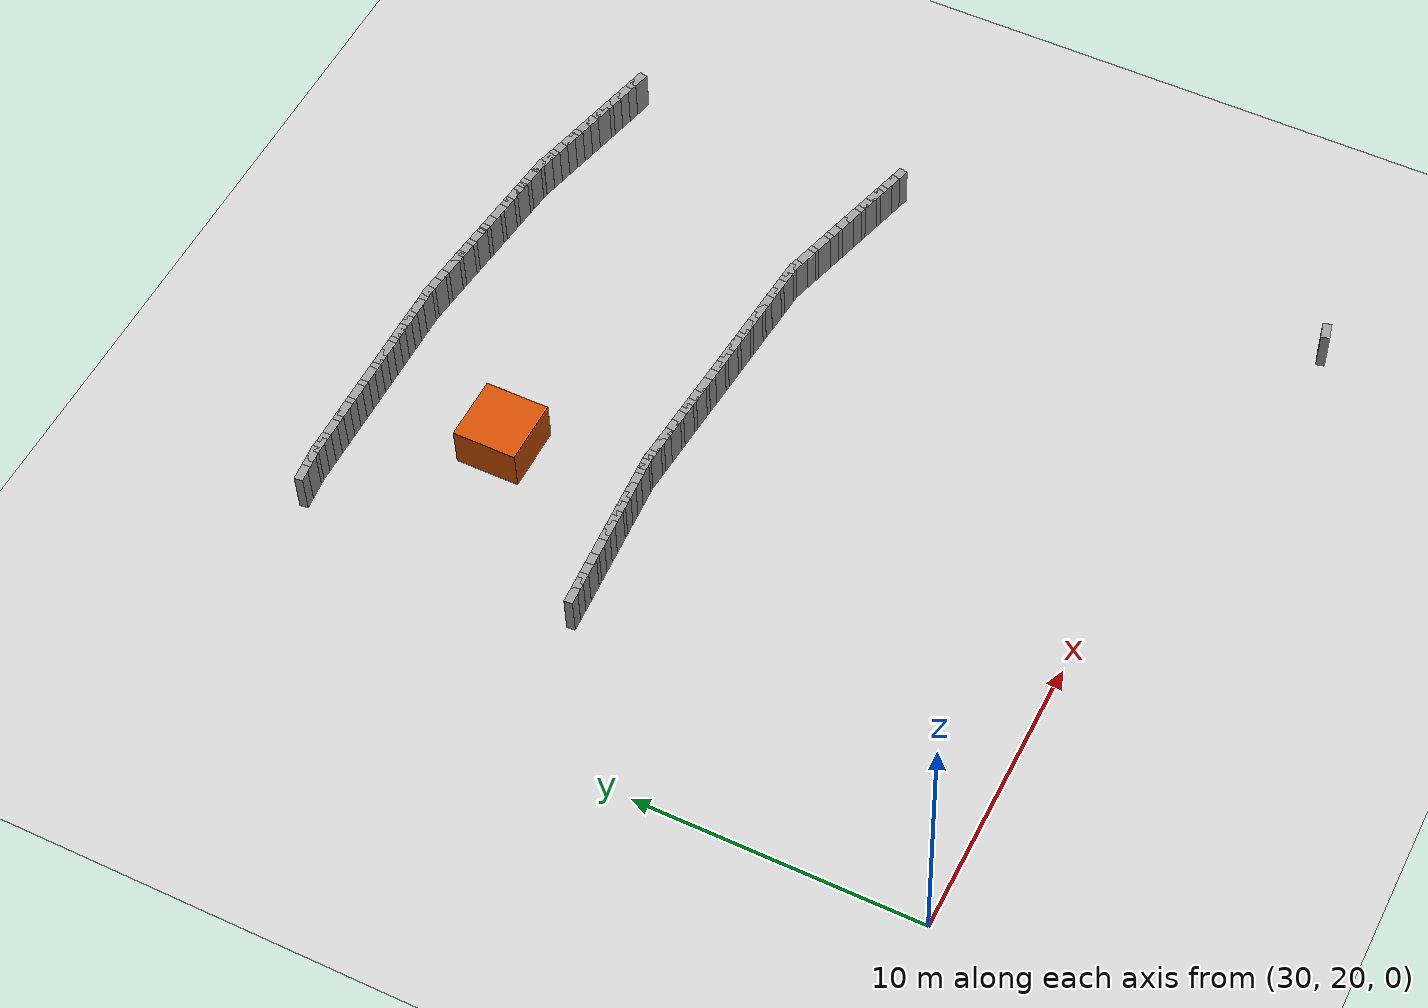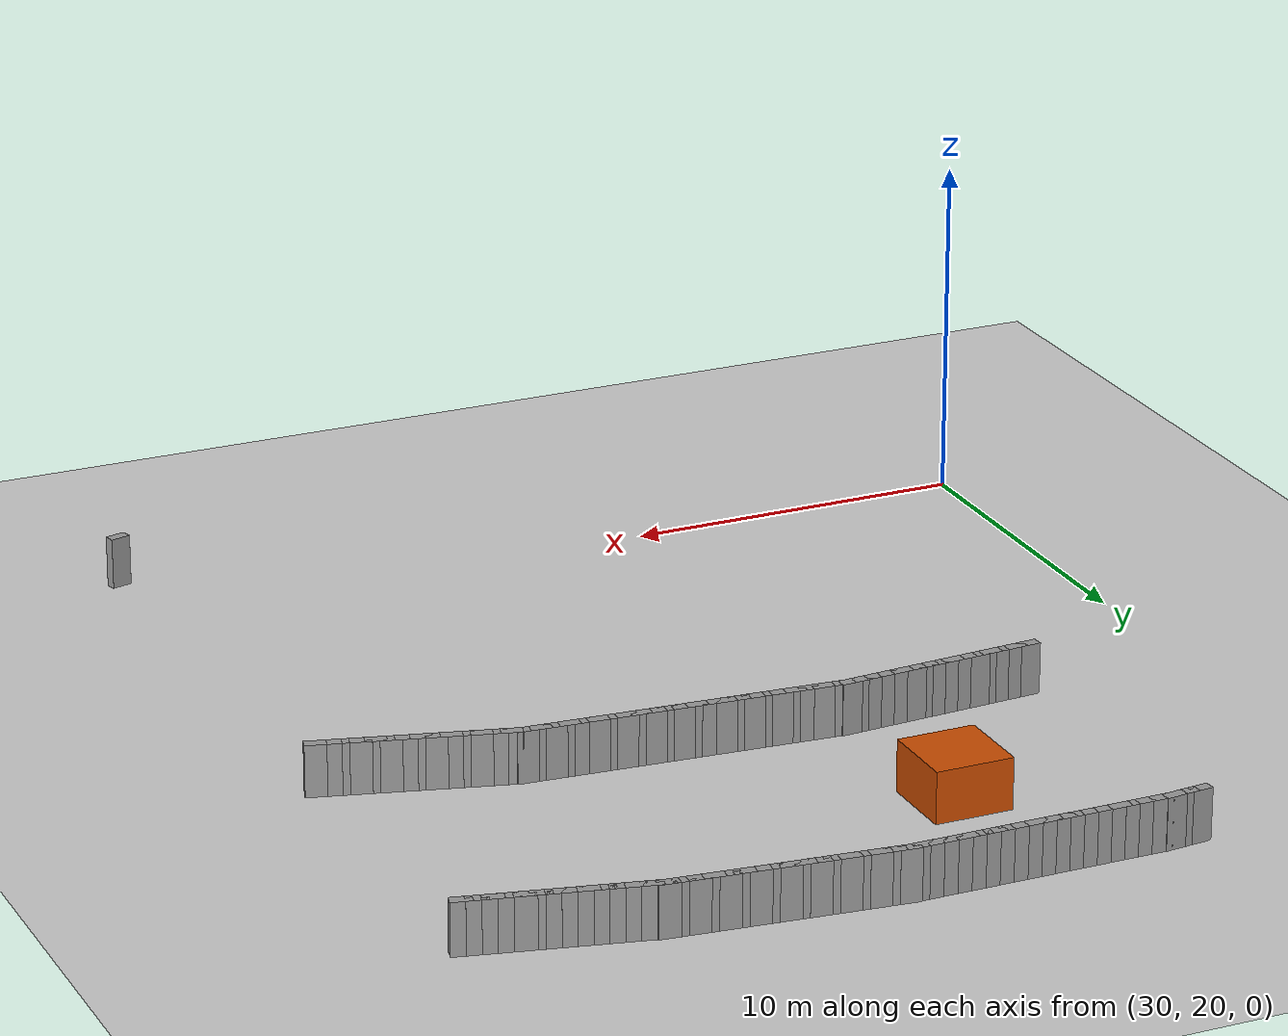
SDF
<sdf version="1.5">
 <world name="img_ellipse_obs">
  <include><uri>model://sun</uri></include>
  <include><uri>model://ground_plane</uri></include>
  <model name="wallL_297">
   <static>true</static>
   <pose>55.198 42.932 0.750 0 0 2.910</pose>
   <link name="link">
    <collision name="col"><geometry><box><size>0.600 0.300 1.500</size></box></geometry></collision>
    <visual name="vis">
     <geometry><box><size>0.600 0.300 1.500</size></box></geometry>
     <material><ambient>0.6 0.6 0.6 1</ambient><diffuse>0.6 0.6 0.6 1</diffuse></material>
    </visual>
   </link>
  </model>
  <model name="wallL_298">
   <static>true</static>
   <pose>54.809 43.024 0.750 0 0 2.910</pose>
   <link name="link">
    <collision name="col"><geometry><box><size>0.600 0.300 1.500</size></box></geometry></collision>
    <visual name="vis">
     <geometry><box><size>0.600 0.300 1.500</size></box></geometry>
     <material><ambient>0.6 0.6 0.6 1</ambient><diffuse>0.6 0.6 0.6 1</diffuse></material>
    </visual>
   </link>
  </model>
  <model name="wallL_299">
   <static>true</static>
   <pose>54.419 43.116 0.750 0 0 2.910</pose>
   <link name="link">
    <collision name="col"><geometry><box><size>0.600 0.300 1.500</size></box></geometry></collision>
    <visual name="vis">
     <geometry><box><size>0.600 0.300 1.500</size></box></geometry>
     <material><ambient>0.6 0.6 0.6 1</ambient><diffuse>0.6 0.6 0.6 1</diffuse></material>
    </visual>
   </link>
  </model>
  <model name="wallL_300">
   <static>true</static>
   <pose>54.030 43.208 0.750 0 0 2.910</pose>
   <link name="link">
    <collision name="col"><geometry><box><size>0.600 0.300 1.500</size></box></geometry></collision>
    <visual name="vis">
     <geometry><box><size>0.600 0.300 1.500</size></box></geometry>
     <material><ambient>0.6 0.6 0.6 1</ambient><diffuse>0.6 0.6 0.6 1</diffuse></material>
    </visual>
   </link>
  </model>
  <model name="wallL_301">
   <static>true</static>
   <pose>53.641 43.300 0.750 0 0 2.910</pose>
   <link name="link">
    <collision name="col"><geometry><box><size>0.600 0.300 1.500</size></box></geometry></collision>
    <visual name="vis">
     <geometry><box><size>0.600 0.300 1.500</size></box></geometry>
     <material><ambient>0.6 0.6 0.6 1</ambient><diffuse>0.6 0.6 0.6 1</diffuse></material>
    </visual>
   </link>
  </model>
  <model name="wallL_302">
   <static>true</static>
   <pose>53.252 43.391 0.750 0 0 2.910</pose>
   <link name="link">
    <collision name="col"><geometry><box><size>0.600 0.300 1.500</size></box></geometry></collision>
    <visual name="vis">
     <geometry><box><size>0.600 0.300 1.500</size></box></geometry>
     <material><ambient>0.6 0.6 0.6 1</ambient><diffuse>0.6 0.6 0.6 1</diffuse></material>
    </visual>
   </link>
  </model>
  <model name="wallL_303">
   <static>true</static>
   <pose>52.862 43.483 0.750 0 0 2.910</pose>
   <link name="link">
    <collision name="col"><geometry><box><size>0.600 0.300 1.500</size></box></geometry></collision>
    <visual name="vis">
     <geometry><box><size>0.600 0.300 1.500</size></box></geometry>
     <material><ambient>0.6 0.6 0.6 1</ambient><diffuse>0.6 0.6 0.6 1</diffuse></material>
    </visual>
   </link>
  </model>
  <model name="wallL_304">
   <static>true</static>
   <pose>52.473 43.575 0.750 0 0 2.910</pose>
   <link name="link">
    <collision name="col"><geometry><box><size>0.600 0.300 1.500</size></box></geometry></collision>
    <visual name="vis">
     <geometry><box><size>0.600 0.300 1.500</size></box></geometry>
     <material><ambient>0.6 0.6 0.6 1</ambient><diffuse>0.6 0.6 0.6 1</diffuse></material>
    </visual>
   </link>
  </model>
  <model name="wallL_305">
   <static>true</static>
   <pose>52.084 43.667 0.750 0 0 2.910</pose>
   <link name="link">
    <collision name="col"><geometry><box><size>0.600 0.300 1.500</size></box></geometry></collision>
    <visual name="vis">
     <geometry><box><size>0.600 0.300 1.500</size></box></geometry>
     <material><ambient>0.6 0.6 0.6 1</ambient><diffuse>0.6 0.6 0.6 1</diffuse></material>
    </visual>
   </link>
  </model>
  <model name="wallL_306">
   <static>true</static>
   <pose>51.694 43.759 0.750 0 0 2.910</pose>
   <link name="link">
    <collision name="col"><geometry><box><size>0.600 0.300 1.500</size></box></geometry></collision>
    <visual name="vis">
     <geometry><box><size>0.600 0.300 1.500</size></box></geometry>
     <material><ambient>0.6 0.6 0.6 1</ambient><diffuse>0.6 0.6 0.6 1</diffuse></material>
    </visual>
   </link>
  </model>
  <model name="wallL_307">
   <static>true</static>
   <pose>51.305 43.851 0.750 0 0 2.910</pose>
   <link name="link">
    <collision name="col"><geometry><box><size>0.600 0.300 1.500</size></box></geometry></collision>
    <visual name="vis">
     <geometry><box><size>0.600 0.300 1.500</size></box></geometry>
     <material><ambient>0.6 0.6 0.6 1</ambient><diffuse>0.6 0.6 0.6 1</diffuse></material>
    </visual>
   </link>
  </model>
  <model name="wallL_308">
   <static>true</static>
   <pose>50.916 43.943 0.750 0 0 2.910</pose>
   <link name="link">
    <collision name="col"><geometry><box><size>0.600 0.300 1.500</size></box></geometry></collision>
    <visual name="vis">
     <geometry><box><size>0.600 0.300 1.500</size></box></geometry>
     <material><ambient>0.6 0.6 0.6 1</ambient><diffuse>0.6 0.6 0.6 1</diffuse></material>
    </visual>
   </link>
  </model>
  <model name="wallL_309">
   <static>true</static>
   <pose>50.527 44.035 0.750 0 0 2.910</pose>
   <link name="link">
    <collision name="col"><geometry><box><size>0.600 0.300 1.500</size></box></geometry></collision>
    <visual name="vis">
     <geometry><box><size>0.600 0.300 1.500</size></box></geometry>
     <material><ambient>0.6 0.6 0.6 1</ambient><diffuse>0.6 0.6 0.6 1</diffuse></material>
    </visual>
   </link>
  </model>
  <model name="wallL_310">
   <static>true</static>
   <pose>50.137 44.126 0.750 0 0 3.035</pose>
   <link name="link">
    <collision name="col"><geometry><box><size>0.600 0.300 1.500</size></box></geometry></collision>
    <visual name="vis">
     <geometry><box><size>0.600 0.300 1.500</size></box></geometry>
     <material><ambient>0.6 0.6 0.6 1</ambient><diffuse>0.6 0.6 0.6 1</diffuse></material>
    </visual>
   </link>
  </model>
  <model name="wallL_311">
   <static>true</static>
   <pose>49.739 44.168 0.750 0 0 3.035</pose>
   <link name="link">
    <collision name="col"><geometry><box><size>0.600 0.300 1.500</size></box></geometry></collision>
    <visual name="vis">
     <geometry><box><size>0.600 0.300 1.500</size></box></geometry>
     <material><ambient>0.6 0.6 0.6 1</ambient><diffuse>0.6 0.6 0.6 1</diffuse></material>
    </visual>
   </link>
  </model>
  <model name="wallL_312">
   <static>true</static>
   <pose>49.342 44.211 0.750 0 0 3.035</pose>
   <link name="link">
    <collision name="col"><geometry><box><size>0.600 0.300 1.500</size></box></geometry></collision>
    <visual name="vis">
     <geometry><box><size>0.600 0.300 1.500</size></box></geometry>
     <material><ambient>0.6 0.6 0.6 1</ambient><diffuse>0.6 0.6 0.6 1</diffuse></material>
    </visual>
   </link>
  </model>
  <model name="wallL_313">
   <static>true</static>
   <pose>48.944 44.253 0.750 0 0 3.035</pose>
   <link name="link">
    <collision name="col"><geometry><box><size>0.600 0.300 1.500</size></box></geometry></collision>
    <visual name="vis">
     <geometry><box><size>0.600 0.300 1.500</size></box></geometry>
     <material><ambient>0.6 0.6 0.6 1</ambient><diffuse>0.6 0.6 0.6 1</diffuse></material>
    </visual>
   </link>
  </model>
  <model name="wallL_314">
   <static>true</static>
   <pose>48.546 44.296 0.750 0 0 3.035</pose>
   <link name="link">
    <collision name="col"><geometry><box><size>0.600 0.300 1.500</size></box></geometry></collision>
    <visual name="vis">
     <geometry><box><size>0.600 0.300 1.500</size></box></geometry>
     <material><ambient>0.6 0.6 0.6 1</ambient><diffuse>0.6 0.6 0.6 1</diffuse></material>
    </visual>
   </link>
  </model>
  <model name="wallL_315">
   <static>true</static>
   <pose>48.148 44.338 0.750 0 0 3.035</pose>
   <link name="link">
    <collision name="col"><geometry><box><size>0.600 0.300 1.500</size></box></geometry></collision>
    <visual name="vis">
     <geometry><box><size>0.600 0.300 1.500</size></box></geometry>
     <material><ambient>0.6 0.6 0.6 1</ambient><diffuse>0.6 0.6 0.6 1</diffuse></material>
    </visual>
   </link>
  </model>
  <model name="wallL_316">
   <static>true</static>
   <pose>47.751 44.381 0.750 0 0 3.035</pose>
   <link name="link">
    <collision name="col"><geometry><box><size>0.600 0.300 1.500</size></box></geometry></collision>
    <visual name="vis">
     <geometry><box><size>0.600 0.300 1.500</size></box></geometry>
     <material><ambient>0.6 0.6 0.6 1</ambient><diffuse>0.6 0.6 0.6 1</diffuse></material>
    </visual>
   </link>
  </model>
  <model name="wallL_317">
   <static>true</static>
   <pose>47.353 44.423 0.750 0 0 3.035</pose>
   <link name="link">
    <collision name="col"><geometry><box><size>0.600 0.300 1.500</size></box></geometry></collision>
    <visual name="vis">
     <geometry><box><size>0.600 0.300 1.500</size></box></geometry>
     <material><ambient>0.6 0.6 0.6 1</ambient><diffuse>0.6 0.6 0.6 1</diffuse></material>
    </visual>
   </link>
  </model>
  <model name="wallL_318">
   <static>true</static>
   <pose>46.955 44.466 0.750 0 0 3.035</pose>
   <link name="link">
    <collision name="col"><geometry><box><size>0.600 0.300 1.500</size></box></geometry></collision>
    <visual name="vis">
     <geometry><box><size>0.600 0.300 1.500</size></box></geometry>
     <material><ambient>0.6 0.6 0.6 1</ambient><diffuse>0.6 0.6 0.6 1</diffuse></material>
    </visual>
   </link>
  </model>
  <model name="wallL_319">
   <static>true</static>
   <pose>46.557 44.508 0.750 0 0 3.035</pose>
   <link name="link">
    <collision name="col"><geometry><box><size>0.600 0.300 1.500</size></box></geometry></collision>
    <visual name="vis">
     <geometry><box><size>0.600 0.300 1.500</size></box></geometry>
     <material><ambient>0.6 0.6 0.6 1</ambient><diffuse>0.6 0.6 0.6 1</diffuse></material>
    </visual>
   </link>
  </model>
  <model name="wallL_320">
   <static>true</static>
   <pose>46.160 44.551 0.750 0 0 3.035</pose>
   <link name="link">
    <collision name="col"><geometry><box><size>0.600 0.300 1.500</size></box></geometry></collision>
    <visual name="vis">
     <geometry><box><size>0.600 0.300 1.500</size></box></geometry>
     <material><ambient>0.6 0.6 0.6 1</ambient><diffuse>0.6 0.6 0.6 1</diffuse></material>
    </visual>
   </link>
  </model>
  <model name="wallL_321">
   <static>true</static>
   <pose>45.762 44.593 0.750 0 0 3.035</pose>
   <link name="link">
    <collision name="col"><geometry><box><size>0.600 0.300 1.500</size></box></geometry></collision>
    <visual name="vis">
     <geometry><box><size>0.600 0.300 1.500</size></box></geometry>
     <material><ambient>0.6 0.6 0.6 1</ambient><diffuse>0.6 0.6 0.6 1</diffuse></material>
    </visual>
   </link>
  </model>
  <model name="wallL_322">
   <static>true</static>
   <pose>45.364 44.636 0.750 0 0 3.035</pose>
   <link name="link">
    <collision name="col"><geometry><box><size>0.600 0.300 1.500</size></box></geometry></collision>
    <visual name="vis">
     <geometry><box><size>0.600 0.300 1.500</size></box></geometry>
     <material><ambient>0.6 0.6 0.6 1</ambient><diffuse>0.6 0.6 0.6 1</diffuse></material>
    </visual>
   </link>
  </model>
  <model name="wallL_323">
   <static>true</static>
   <pose>44.967 44.678 0.750 0 0 3.035</pose>
   <link name="link">
    <collision name="col"><geometry><box><size>0.600 0.300 1.500</size></box></geometry></collision>
    <visual name="vis">
     <geometry><box><size>0.600 0.300 1.500</size></box></geometry>
     <material><ambient>0.6 0.6 0.6 1</ambient><diffuse>0.6 0.6 0.6 1</diffuse></material>
    </visual>
   </link>
  </model>
  <model name="wallL_324">
   <static>true</static>
   <pose>44.569 44.721 0.750 0 0 3.035</pose>
   <link name="link">
    <collision name="col"><geometry><box><size>0.600 0.300 1.500</size></box></geometry></collision>
    <visual name="vis">
     <geometry><box><size>0.600 0.300 1.500</size></box></geometry>
     <material><ambient>0.6 0.6 0.6 1</ambient><diffuse>0.6 0.6 0.6 1</diffuse></material>
    </visual>
   </link>
  </model>
  <model name="wallL_325">
   <static>true</static>
   <pose>44.171 44.763 0.750 0 0 3.035</pose>
   <link name="link">
    <collision name="col"><geometry><box><size>0.600 0.300 1.500</size></box></geometry></collision>
    <visual name="vis">
     <geometry><box><size>0.600 0.300 1.500</size></box></geometry>
     <material><ambient>0.6 0.6 0.6 1</ambient><diffuse>0.6 0.6 0.6 1</diffuse></material>
    </visual>
   </link>
  </model>
  <model name="wallL_326">
   <static>true</static>
   <pose>43.773 44.806 0.750 0 0 3.035</pose>
   <link name="link">
    <collision name="col"><geometry><box><size>0.600 0.300 1.500</size></box></geometry></collision>
    <visual name="vis">
     <geometry><box><size>0.600 0.300 1.500</size></box></geometry>
     <material><ambient>0.6 0.6 0.6 1</ambient><diffuse>0.6 0.6 0.6 1</diffuse></material>
    </visual>
   </link>
  </model>
  <model name="wallL_327">
   <static>true</static>
   <pose>43.373 44.809 0.750 0 0 3.142</pose>
   <link name="link">
    <collision name="col"><geometry><box><size>0.600 0.300 1.500</size></box></geometry></collision>
    <visual name="vis">
     <geometry><box><size>0.600 0.300 1.500</size></box></geometry>
     <material><ambient>0.6 0.6 0.6 1</ambient><diffuse>0.6 0.6 0.6 1</diffuse></material>
    </visual>
   </link>
  </model>
  <model name="wallL_328">
   <static>true</static>
   <pose>42.973 44.809 0.750 0 0 3.142</pose>
   <link name="link">
    <collision name="col"><geometry><box><size>0.600 0.300 1.500</size></box></geometry></collision>
    <visual name="vis">
     <geometry><box><size>0.600 0.300 1.500</size></box></geometry>
     <material><ambient>0.6 0.6 0.6 1</ambient><diffuse>0.6 0.6 0.6 1</diffuse></material>
    </visual>
   </link>
  </model>
  <model name="wallL_329">
   <static>true</static>
   <pose>42.573 44.809 0.750 0 0 3.142</pose>
   <link name="link">
    <collision name="col"><geometry><box><size>0.600 0.300 1.500</size></box></geometry></collision>
    <visual name="vis">
     <geometry><box><size>0.600 0.300 1.500</size></box></geometry>
     <material><ambient>0.6 0.6 0.6 1</ambient><diffuse>0.6 0.6 0.6 1</diffuse></material>
    </visual>
   </link>
  </model>
  <model name="wallL_330">
   <static>true</static>
   <pose>42.173 44.809 0.750 0 0 3.142</pose>
   <link name="link">
    <collision name="col"><geometry><box><size>0.600 0.300 1.500</size></box></geometry></collision>
    <visual name="vis">
     <geometry><box><size>0.600 0.300 1.500</size></box></geometry>
     <material><ambient>0.6 0.6 0.6 1</ambient><diffuse>0.6 0.6 0.6 1</diffuse></material>
    </visual>
   </link>
  </model>
  <model name="wallL_331">
   <static>true</static>
   <pose>41.773 44.809 0.750 0 0 3.142</pose>
   <link name="link">
    <collision name="col"><geometry><box><size>0.600 0.300 1.500</size></box></geometry></collision>
    <visual name="vis">
     <geometry><box><size>0.600 0.300 1.500</size></box></geometry>
     <material><ambient>0.6 0.6 0.6 1</ambient><diffuse>0.6 0.6 0.6 1</diffuse></material>
    </visual>
   </link>
  </model>
  <model name="wallL_332">
   <static>true</static>
   <pose>41.373 44.809 0.750 0 0 3.142</pose>
   <link name="link">
    <collision name="col"><geometry><box><size>0.600 0.300 1.500</size></box></geometry></collision>
    <visual name="vis">
     <geometry><box><size>0.600 0.300 1.500</size></box></geometry>
     <material><ambient>0.6 0.6 0.6 1</ambient><diffuse>0.6 0.6 0.6 1</diffuse></material>
    </visual>
   </link>
  </model>
  <model name="wallL_333">
   <static>true</static>
   <pose>40.973 44.809 0.750 0 0 3.142</pose>
   <link name="link">
    <collision name="col"><geometry><box><size>0.600 0.300 1.500</size></box></geometry></collision>
    <visual name="vis">
     <geometry><box><size>0.600 0.300 1.500</size></box></geometry>
     <material><ambient>0.6 0.6 0.6 1</ambient><diffuse>0.6 0.6 0.6 1</diffuse></material>
    </visual>
   </link>
  </model>
  <model name="wallL_334">
   <static>true</static>
   <pose>40.573 44.809 0.750 0 0 3.142</pose>
   <link name="link">
    <collision name="col"><geometry><box><size>0.600 0.300 1.500</size></box></geometry></collision>
    <visual name="vis">
     <geometry><box><size>0.600 0.300 1.500</size></box></geometry>
     <material><ambient>0.6 0.6 0.6 1</ambient><diffuse>0.6 0.6 0.6 1</diffuse></material>
    </visual>
   </link>
  </model>
  <model name="wallL_335">
   <static>true</static>
   <pose>40.173 44.809 0.750 0 0 3.142</pose>
   <link name="link">
    <collision name="col"><geometry><box><size>0.600 0.300 1.500</size></box></geometry></collision>
    <visual name="vis">
     <geometry><box><size>0.600 0.300 1.500</size></box></geometry>
     <material><ambient>0.6 0.6 0.6 1</ambient><diffuse>0.6 0.6 0.6 1</diffuse></material>
    </visual>
   </link>
  </model>
  <model name="wallL_336">
   <static>true</static>
   <pose>39.773 44.809 0.750 0 0 3.142</pose>
   <link name="link">
    <collision name="col"><geometry><box><size>0.600 0.300 1.500</size></box></geometry></collision>
    <visual name="vis">
     <geometry><box><size>0.600 0.300 1.500</size></box></geometry>
     <material><ambient>0.6 0.6 0.6 1</ambient><diffuse>0.6 0.6 0.6 1</diffuse></material>
    </visual>
   </link>
  </model>
  <model name="wallL_337">
   <static>true</static>
   <pose>39.373 44.809 0.750 0 0 3.142</pose>
   <link name="link">
    <collision name="col"><geometry><box><size>0.600 0.300 1.500</size></box></geometry></collision>
    <visual name="vis">
     <geometry><box><size>0.600 0.300 1.500</size></box></geometry>
     <material><ambient>0.6 0.6 0.6 1</ambient><diffuse>0.6 0.6 0.6 1</diffuse></material>
    </visual>
   </link>
  </model>
  <model name="wallL_338">
   <static>true</static>
   <pose>38.973 44.809 0.750 0 0 3.142</pose>
   <link name="link">
    <collision name="col"><geometry><box><size>0.600 0.300 1.500</size></box></geometry></collision>
    <visual name="vis">
     <geometry><box><size>0.600 0.300 1.500</size></box></geometry>
     <material><ambient>0.6 0.6 0.6 1</ambient><diffuse>0.6 0.6 0.6 1</diffuse></material>
    </visual>
   </link>
  </model>
  <model name="wallL_339">
   <static>true</static>
   <pose>38.573 44.809 0.750 0 0 3.142</pose>
   <link name="link">
    <collision name="col"><geometry><box><size>0.600 0.300 1.500</size></box></geometry></collision>
    <visual name="vis">
     <geometry><box><size>0.600 0.300 1.500</size></box></geometry>
     <material><ambient>0.6 0.6 0.6 1</ambient><diffuse>0.6 0.6 0.6 1</diffuse></material>
    </visual>
   </link>
  </model>
  <model name="wallL_340">
   <static>true</static>
   <pose>38.173 44.809 0.750 0 0 3.142</pose>
   <link name="link">
    <collision name="col"><geometry><box><size>0.600 0.300 1.500</size></box></geometry></collision>
    <visual name="vis">
     <geometry><box><size>0.600 0.300 1.500</size></box></geometry>
     <material><ambient>0.6 0.6 0.6 1</ambient><diffuse>0.6 0.6 0.6 1</diffuse></material>
    </visual>
   </link>
  </model>
  <model name="wallL_341">
   <static>true</static>
   <pose>37.773 44.809 0.750 0 0 3.142</pose>
   <link name="link">
    <collision name="col"><geometry><box><size>0.600 0.300 1.500</size></box></geometry></collision>
    <visual name="vis">
     <geometry><box><size>0.600 0.300 1.500</size></box></geometry>
     <material><ambient>0.6 0.6 0.6 1</ambient><diffuse>0.6 0.6 0.6 1</diffuse></material>
    </visual>
   </link>
  </model>
  <model name="wallL_342">
   <static>true</static>
   <pose>37.373 44.809 0.750 0 0 3.142</pose>
   <link name="link">
    <collision name="col"><geometry><box><size>0.600 0.300 1.500</size></box></geometry></collision>
    <visual name="vis">
     <geometry><box><size>0.600 0.300 1.500</size></box></geometry>
     <material><ambient>0.6 0.6 0.6 1</ambient><diffuse>0.6 0.6 0.6 1</diffuse></material>
    </visual>
   </link>
  </model>
  <model name="wallL_343">
   <static>true</static>
   <pose>36.973 44.809 0.750 0 0 3.142</pose>
   <link name="link">
    <collision name="col"><geometry><box><size>0.600 0.300 1.500</size></box></geometry></collision>
    <visual name="vis">
     <geometry><box><size>0.600 0.300 1.500</size></box></geometry>
     <material><ambient>0.6 0.6 0.6 1</ambient><diffuse>0.6 0.6 0.6 1</diffuse></material>
    </visual>
   </link>
  </model>
  <model name="wallL_344">
   <static>true</static>
   <pose>36.573 44.809 0.750 0 0 3.142</pose>
   <link name="link">
    <collision name="col"><geometry><box><size>0.600 0.300 1.500</size></box></geometry></collision>
    <visual name="vis">
     <geometry><box><size>0.600 0.300 1.500</size></box></geometry>
     <material><ambient>0.6 0.6 0.6 1</ambient><diffuse>0.6 0.6 0.6 1</diffuse></material>
    </visual>
   </link>
  </model>
  <model name="wallL_345">
   <static>true</static>
   <pose>36.174 44.798 0.750 0 0 -3.042</pose>
   <link name="link">
    <collision name="col"><geometry><box><size>0.600 0.300 1.500</size></box></geometry></collision>
    <visual name="vis">
     <geometry><box><size>0.600 0.300 1.500</size></box></geometry>
     <material><ambient>0.6 0.6 0.6 1</ambient><diffuse>0.6 0.6 0.6 1</diffuse></material>
    </visual>
   </link>
  </model>
  <model name="wallL_346">
   <static>true</static>
   <pose>35.776 44.758 0.750 0 0 -3.042</pose>
   <link name="link">
    <collision name="col"><geometry><box><size>0.600 0.300 1.500</size></box></geometry></collision>
    <visual name="vis">
     <geometry><box><size>0.600 0.300 1.500</size></box></geometry>
     <material><ambient>0.6 0.6 0.6 1</ambient><diffuse>0.6 0.6 0.6 1</diffuse></material>
    </visual>
   </link>
  </model>
  <model name="wallL_347">
   <static>true</static>
   <pose>35.378 44.719 0.750 0 0 -3.042</pose>
   <link name="link">
    <collision name="col"><geometry><box><size>0.600 0.300 1.500</size></box></geometry></collision>
    <visual name="vis">
     <geometry><box><size>0.600 0.300 1.500</size></box></geometry>
     <material><ambient>0.6 0.6 0.6 1</ambient><diffuse>0.6 0.6 0.6 1</diffuse></material>
    </visual>
   </link>
  </model>
  <model name="wallR_59">
   <static>true</static>
   <pose>34.984 34.653 0.750 0 0 0.058</pose>
   <link name="link">
    <collision name="col"><geometry><box><size>0.600 0.300 1.500</size></box></geometry></collision>
    <visual name="vis">
     <geometry><box><size>0.600 0.300 1.500</size></box></geometry>
     <material><ambient>0.6 0.6 0.6 1</ambient><diffuse>0.6 0.6 0.6 1</diffuse></material>
    </visual>
   </link>
  </model>
  <model name="wallR_60">
   <static>true</static>
   <pose>35.383 34.676 0.750 0 0 0.058</pose>
   <link name="link">
    <collision name="col"><geometry><box><size>0.600 0.300 1.500</size></box></geometry></collision>
    <visual name="vis">
     <geometry><box><size>0.600 0.300 1.500</size></box></geometry>
     <material><ambient>0.6 0.6 0.6 1</ambient><diffuse>0.6 0.6 0.6 1</diffuse></material>
    </visual>
   </link>
  </model>
  <model name="wallR_61">
   <static>true</static>
   <pose>35.783 34.699 0.750 0 0 0.058</pose>
   <link name="link">
    <collision name="col"><geometry><box><size>0.600 0.300 1.500</size></box></geometry></collision>
    <visual name="vis">
     <geometry><box><size>0.600 0.300 1.500</size></box></geometry>
     <material><ambient>0.6 0.6 0.6 1</ambient><diffuse>0.6 0.6 0.6 1</diffuse></material>
    </visual>
   </link>
  </model>
  <model name="wallR_62">
   <static>true</static>
   <pose>36.182 34.722 0.750 0 0 0.058</pose>
   <link name="link">
    <collision name="col"><geometry><box><size>0.600 0.300 1.500</size></box></geometry></collision>
    <visual name="vis">
     <geometry><box><size>0.600 0.300 1.500</size></box></geometry>
     <material><ambient>0.6 0.6 0.6 1</ambient><diffuse>0.6 0.6 0.6 1</diffuse></material>
    </visual>
   </link>
  </model>
  <model name="wallR_63">
   <static>true</static>
   <pose>36.581 34.746 0.750 0 0 0.058</pose>
   <link name="link">
    <collision name="col"><geometry><box><size>0.600 0.300 1.500</size></box></geometry></collision>
    <visual name="vis">
     <geometry><box><size>0.600 0.300 1.500</size></box></geometry>
     <material><ambient>0.6 0.6 0.6 1</ambient><diffuse>0.6 0.6 0.6 1</diffuse></material>
    </visual>
   </link>
  </model>
  <model name="wallR_64">
   <static>true</static>
   <pose>36.981 34.769 0.750 0 0 0.058</pose>
   <link name="link">
    <collision name="col"><geometry><box><size>0.600 0.300 1.500</size></box></geometry></collision>
    <visual name="vis">
     <geometry><box><size>0.600 0.300 1.500</size></box></geometry>
     <material><ambient>0.6 0.6 0.6 1</ambient><diffuse>0.6 0.6 0.6 1</diffuse></material>
    </visual>
   </link>
  </model>
  <model name="wallR_65">
   <static>true</static>
   <pose>37.380 34.792 0.750 0 0 0.058</pose>
   <link name="link">
    <collision name="col"><geometry><box><size>0.600 0.300 1.500</size></box></geometry></collision>
    <visual name="vis">
     <geometry><box><size>0.600 0.300 1.500</size></box></geometry>
     <material><ambient>0.6 0.6 0.6 1</ambient><diffuse>0.6 0.6 0.6 1</diffuse></material>
    </visual>
   </link>
  </model>
  <model name="wallR_66">
   <static>true</static>
   <pose>37.779 34.815 0.750 0 0 0.058</pose>
   <link name="link">
    <collision name="col"><geometry><box><size>0.600 0.300 1.500</size></box></geometry></collision>
    <visual name="vis">
     <geometry><box><size>0.600 0.300 1.500</size></box></geometry>
     <material><ambient>0.6 0.6 0.6 1</ambient><diffuse>0.6 0.6 0.6 1</diffuse></material>
    </visual>
   </link>
  </model>
  <model name="wallR_67">
   <static>true</static>
   <pose>38.179 34.838 0.750 0 0 0.058</pose>
   <link name="link">
    <collision name="col"><geometry><box><size>0.600 0.300 1.500</size></box></geometry></collision>
    <visual name="vis">
     <geometry><box><size>0.600 0.300 1.500</size></box></geometry>
     <material><ambient>0.6 0.6 0.6 1</ambient><diffuse>0.6 0.6 0.6 1</diffuse></material>
    </visual>
   </link>
  </model>
  <model name="wallR_68">
   <static>true</static>
   <pose>38.578 34.862 0.750 0 0 0.058</pose>
   <link name="link">
    <collision name="col"><geometry><box><size>0.600 0.300 1.500</size></box></geometry></collision>
    <visual name="vis">
     <geometry><box><size>0.600 0.300 1.500</size></box></geometry>
     <material><ambient>0.6 0.6 0.6 1</ambient><diffuse>0.6 0.6 0.6 1</diffuse></material>
    </visual>
   </link>
  </model>
  <model name="wallR_69">
   <static>true</static>
   <pose>38.977 34.885 0.750 0 0 0.058</pose>
   <link name="link">
    <collision name="col"><geometry><box><size>0.600 0.300 1.500</size></box></geometry></collision>
    <visual name="vis">
     <geometry><box><size>0.600 0.300 1.500</size></box></geometry>
     <material><ambient>0.6 0.6 0.6 1</ambient><diffuse>0.6 0.6 0.6 1</diffuse></material>
    </visual>
   </link>
  </model>
  <model name="wallR_70">
   <static>true</static>
   <pose>39.377 34.908 0.750 0 0 0.058</pose>
   <link name="link">
    <collision name="col"><geometry><box><size>0.600 0.300 1.500</size></box></geometry></collision>
    <visual name="vis">
     <geometry><box><size>0.600 0.300 1.500</size></box></geometry>
     <material><ambient>0.6 0.6 0.6 1</ambient><diffuse>0.6 0.6 0.6 1</diffuse></material>
    </visual>
   </link>
  </model>
  <model name="wallR_71">
   <static>true</static>
   <pose>39.776 34.931 0.750 0 0 0.058</pose>
   <link name="link">
    <collision name="col"><geometry><box><size>0.600 0.300 1.500</size></box></geometry></collision>
    <visual name="vis">
     <geometry><box><size>0.600 0.300 1.500</size></box></geometry>
     <material><ambient>0.6 0.6 0.6 1</ambient><diffuse>0.6 0.6 0.6 1</diffuse></material>
    </visual>
   </link>
  </model>
  <model name="wallR_72">
   <static>true</static>
   <pose>40.175 34.954 0.750 0 0 0.058</pose>
   <link name="link">
    <collision name="col"><geometry><box><size>0.600 0.300 1.500</size></box></geometry></collision>
    <visual name="vis">
     <geometry><box><size>0.600 0.300 1.500</size></box></geometry>
     <material><ambient>0.6 0.6 0.6 1</ambient><diffuse>0.6 0.6 0.6 1</diffuse></material>
    </visual>
   </link>
  </model>
  <model name="wallR_73">
   <static>true</static>
   <pose>40.574 34.978 0.750 0 0 0.058</pose>
   <link name="link">
    <collision name="col"><geometry><box><size>0.600 0.300 1.500</size></box></geometry></collision>
    <visual name="vis">
     <geometry><box><size>0.600 0.300 1.500</size></box></geometry>
     <material><ambient>0.6 0.6 0.6 1</ambient><diffuse>0.6 0.6 0.6 1</diffuse></material>
    </visual>
   </link>
  </model>
  <model name="wallR_74">
   <static>true</static>
   <pose>40.973 34.957 0.750 0 0 -0.076</pose>
   <link name="link">
    <collision name="col"><geometry><box><size>0.600 0.300 1.500</size></box></geometry></collision>
    <visual name="vis">
     <geometry><box><size>0.600 0.300 1.500</size></box></geometry>
     <material><ambient>0.6 0.6 0.6 1</ambient><diffuse>0.6 0.6 0.6 1</diffuse></material>
    </visual>
   </link>
  </model>
  <model name="wallR_75">
   <static>true</static>
   <pose>41.372 34.927 0.750 0 0 -0.076</pose>
   <link name="link">
    <collision name="col"><geometry><box><size>0.600 0.300 1.500</size></box></geometry></collision>
    <visual name="vis">
     <geometry><box><size>0.600 0.300 1.500</size></box></geometry>
     <material><ambient>0.6 0.6 0.6 1</ambient><diffuse>0.6 0.6 0.6 1</diffuse></material>
    </visual>
   </link>
  </model>
  <model name="wallR_76">
   <static>true</static>
   <pose>41.771 34.896 0.750 0 0 -0.076</pose>
   <link name="link">
    <collision name="col"><geometry><box><size>0.600 0.300 1.500</size></box></geometry></collision>
    <visual name="vis">
     <geometry><box><size>0.600 0.300 1.500</size></box></geometry>
     <material><ambient>0.6 0.6 0.6 1</ambient><diffuse>0.6 0.6 0.6 1</diffuse></material>
    </visual>
   </link>
  </model>
  <model name="wallR_77">
   <static>true</static>
   <pose>42.170 34.865 0.750 0 0 -0.076</pose>
   <link name="link">
    <collision name="col"><geometry><box><size>0.600 0.300 1.500</size></box></geometry></collision>
    <visual name="vis">
     <geometry><box><size>0.600 0.300 1.500</size></box></geometry>
     <material><ambient>0.6 0.6 0.6 1</ambient><diffuse>0.6 0.6 0.6 1</diffuse></material>
    </visual>
   </link>
  </model>
  <model name="wallR_78">
   <static>true</static>
   <pose>42.569 34.835 0.750 0 0 -0.076</pose>
   <link name="link">
    <collision name="col"><geometry><box><size>0.600 0.300 1.500</size></box></geometry></collision>
    <visual name="vis">
     <geometry><box><size>0.600 0.300 1.500</size></box></geometry>
     <material><ambient>0.6 0.6 0.6 1</ambient><diffuse>0.6 0.6 0.6 1</diffuse></material>
    </visual>
   </link>
  </model>
  <model name="wallR_79">
   <static>true</static>
   <pose>42.968 34.804 0.750 0 0 -0.076</pose>
   <link name="link">
    <collision name="col"><geometry><box><size>0.600 0.300 1.500</size></box></geometry></collision>
    <visual name="vis">
     <geometry><box><size>0.600 0.300 1.500</size></box></geometry>
     <material><ambient>0.6 0.6 0.6 1</ambient><diffuse>0.6 0.6 0.6 1</diffuse></material>
    </visual>
   </link>
  </model>
  <model name="wallR_80">
   <static>true</static>
   <pose>43.366 34.774 0.750 0 0 -0.076</pose>
   <link name="link">
    <collision name="col"><geometry><box><size>0.600 0.300 1.500</size></box></geometry></collision>
    <visual name="vis">
     <geometry><box><size>0.600 0.300 1.500</size></box></geometry>
     <material><ambient>0.6 0.6 0.6 1</ambient><diffuse>0.6 0.6 0.6 1</diffuse></material>
    </visual>
   </link>
  </model>
  <model name="wallR_81">
   <static>true</static>
   <pose>43.765 34.743 0.750 0 0 -0.076</pose>
   <link name="link">
    <collision name="col"><geometry><box><size>0.600 0.300 1.500</size></box></geometry></collision>
    <visual name="vis">
     <geometry><box><size>0.600 0.300 1.500</size></box></geometry>
     <material><ambient>0.6 0.6 0.6 1</ambient><diffuse>0.6 0.6 0.6 1</diffuse></material>
    </visual>
   </link>
  </model>
  <model name="wallR_82">
   <static>true</static>
   <pose>44.164 34.713 0.750 0 0 -0.076</pose>
   <link name="link">
    <collision name="col"><geometry><box><size>0.600 0.300 1.500</size></box></geometry></collision>
    <visual name="vis">
     <geometry><box><size>0.600 0.300 1.500</size></box></geometry>
     <material><ambient>0.6 0.6 0.6 1</ambient><diffuse>0.6 0.6 0.6 1</diffuse></material>
    </visual>
   </link>
  </model>
  <model name="wallR_83">
   <static>true</static>
   <pose>44.563 34.682 0.750 0 0 -0.076</pose>
   <link name="link">
    <collision name="col"><geometry><box><size>0.600 0.300 1.500</size></box></geometry></collision>
    <visual name="vis">
     <geometry><box><size>0.600 0.300 1.500</size></box></geometry>
     <material><ambient>0.6 0.6 0.6 1</ambient><diffuse>0.6 0.6 0.6 1</diffuse></material>
    </visual>
   </link>
  </model>
  <model name="wallR_84">
   <static>true</static>
   <pose>44.962 34.651 0.750 0 0 -0.076</pose>
   <link name="link">
    <collision name="col"><geometry><box><size>0.600 0.300 1.500</size></box></geometry></collision>
    <visual name="vis">
     <geometry><box><size>0.600 0.300 1.500</size></box></geometry>
     <material><ambient>0.6 0.6 0.6 1</ambient><diffuse>0.6 0.6 0.6 1</diffuse></material>
    </visual>
   </link>
  </model>
  <model name="wallR_85">
   <static>true</static>
   <pose>45.361 34.621 0.750 0 0 -0.076</pose>
   <link name="link">
    <collision name="col"><geometry><box><size>0.600 0.300 1.500</size></box></geometry></collision>
    <visual name="vis">
     <geometry><box><size>0.600 0.300 1.500</size></box></geometry>
     <material><ambient>0.6 0.6 0.6 1</ambient><diffuse>0.6 0.6 0.6 1</diffuse></material>
    </visual>
   </link>
  </model>
  <model name="wallR_86">
   <static>true</static>
   <pose>45.759 34.590 0.750 0 0 -0.076</pose>
   <link name="link">
    <collision name="col"><geometry><box><size>0.600 0.300 1.500</size></box></geometry></collision>
    <visual name="vis">
     <geometry><box><size>0.600 0.300 1.500</size></box></geometry>
     <material><ambient>0.6 0.6 0.6 1</ambient><diffuse>0.6 0.6 0.6 1</diffuse></material>
    </visual>
   </link>
  </model>
  <model name="wallR_87">
   <static>true</static>
   <pose>46.158 34.560 0.750 0 0 -0.076</pose>
   <link name="link">
    <collision name="col"><geometry><box><size>0.600 0.300 1.500</size></box></geometry></collision>
    <visual name="vis">
     <geometry><box><size>0.600 0.300 1.500</size></box></geometry>
     <material><ambient>0.6 0.6 0.6 1</ambient><diffuse>0.6 0.6 0.6 1</diffuse></material>
    </visual>
   </link>
  </model>
  <model name="wallR_88">
   <static>true</static>
   <pose>46.557 34.529 0.750 0 0 -0.076</pose>
   <link name="link">
    <collision name="col"><geometry><box><size>0.600 0.300 1.500</size></box></geometry></collision>
    <visual name="vis">
     <geometry><box><size>0.600 0.300 1.500</size></box></geometry>
     <material><ambient>0.6 0.6 0.6 1</ambient><diffuse>0.6 0.6 0.6 1</diffuse></material>
    </visual>
   </link>
  </model>
  <model name="wallR_89">
   <static>true</static>
   <pose>46.956 34.499 0.750 0 0 -0.076</pose>
   <link name="link">
    <collision name="col"><geometry><box><size>0.600 0.300 1.500</size></box></geometry></collision>
    <visual name="vis">
     <geometry><box><size>0.600 0.300 1.500</size></box></geometry>
     <material><ambient>0.6 0.6 0.6 1</ambient><diffuse>0.6 0.6 0.6 1</diffuse></material>
    </visual>
   </link>
  </model>
  <model name="wallR_90">
   <static>true</static>
   <pose>47.355 34.468 0.750 0 0 -0.076</pose>
   <link name="link">
    <collision name="col"><geometry><box><size>0.600 0.300 1.500</size></box></geometry></collision>
    <visual name="vis">
     <geometry><box><size>0.600 0.300 1.500</size></box></geometry>
     <material><ambient>0.6 0.6 0.6 1</ambient><diffuse>0.6 0.6 0.6 1</diffuse></material>
    </visual>
   </link>
  </model>
  <model name="wallR_91">
   <static>true</static>
   <pose>47.754 34.438 0.750 0 0 -0.076</pose>
   <link name="link">
    <collision name="col"><geometry><box><size>0.600 0.300 1.500</size></box></geometry></collision>
    <visual name="vis">
     <geometry><box><size>0.600 0.300 1.500</size></box></geometry>
     <material><ambient>0.6 0.6 0.6 1</ambient><diffuse>0.6 0.6 0.6 1</diffuse></material>
    </visual>
   </link>
  </model>
  <model name="wallR_92">
   <static>true</static>
   <pose>48.152 34.407 0.750 0 0 -0.076</pose>
   <link name="link">
    <collision name="col"><geometry><box><size>0.600 0.300 1.500</size></box></geometry></collision>
    <visual name="vis">
     <geometry><box><size>0.600 0.300 1.500</size></box></geometry>
     <material><ambient>0.6 0.6 0.6 1</ambient><diffuse>0.6 0.6 0.6 1</diffuse></material>
    </visual>
   </link>
  </model>
  <model name="wallR_93">
   <static>true</static>
   <pose>48.551 34.376 0.750 0 0 -0.076</pose>
   <link name="link">
    <collision name="col"><geometry><box><size>0.600 0.300 1.500</size></box></geometry></collision>
    <visual name="vis">
     <geometry><box><size>0.600 0.300 1.500</size></box></geometry>
     <material><ambient>0.6 0.6 0.6 1</ambient><diffuse>0.6 0.6 0.6 1</diffuse></material>
    </visual>
   </link>
  </model>
  <model name="wallR_94">
   <static>true</static>
   <pose>48.950 34.346 0.750 0 0 -0.076</pose>
   <link name="link">
    <collision name="col"><geometry><box><size>0.600 0.300 1.500</size></box></geometry></collision>
    <visual name="vis">
     <geometry><box><size>0.600 0.300 1.500</size></box></geometry>
     <material><ambient>0.6 0.6 0.6 1</ambient><diffuse>0.6 0.6 0.6 1</diffuse></material>
    </visual>
   </link>
  </model>
  <model name="wallR_95">
   <static>true</static>
   <pose>49.349 34.315 0.750 0 0 -0.076</pose>
   <link name="link">
    <collision name="col"><geometry><box><size>0.600 0.300 1.500</size></box></geometry></collision>
    <visual name="vis">
     <geometry><box><size>0.600 0.300 1.500</size></box></geometry>
     <material><ambient>0.6 0.6 0.6 1</ambient><diffuse>0.6 0.6 0.6 1</diffuse></material>
    </visual>
   </link>
  </model>
  <model name="wallR_96">
   <static>true</static>
   <pose>49.748 34.285 0.750 0 0 -0.076</pose>
   <link name="link">
    <collision name="col"><geometry><box><size>0.600 0.300 1.500</size></box></geometry></collision>
    <visual name="vis">
     <geometry><box><size>0.600 0.300 1.500</size></box></geometry>
     <material><ambient>0.6 0.6 0.6 1</ambient><diffuse>0.6 0.6 0.6 1</diffuse></material>
    </visual>
   </link>
  </model>
  <model name="wallR_97">
   <static>true</static>
   <pose>50.137 34.202 0.750 0 0 -0.269</pose>
   <link name="link">
    <collision name="col"><geometry><box><size>0.600 0.300 1.500</size></box></geometry></collision>
    <visual name="vis">
     <geometry><box><size>0.600 0.300 1.500</size></box></geometry>
     <material><ambient>0.6 0.6 0.6 1</ambient><diffuse>0.6 0.6 0.6 1</diffuse></material>
    </visual>
   </link>
  </model>
  <model name="wallR_98">
   <static>true</static>
   <pose>50.523 34.096 0.750 0 0 -0.269</pose>
   <link name="link">
    <collision name="col"><geometry><box><size>0.600 0.300 1.500</size></box></geometry></collision>
    <visual name="vis">
     <geometry><box><size>0.600 0.300 1.500</size></box></geometry>
     <material><ambient>0.6 0.6 0.6 1</ambient><diffuse>0.6 0.6 0.6 1</diffuse></material>
    </visual>
   </link>
  </model>
  <model name="wallR_99">
   <static>true</static>
   <pose>50.909 33.990 0.750 0 0 -0.269</pose>
   <link name="link">
    <collision name="col"><geometry><box><size>0.600 0.300 1.500</size></box></geometry></collision>
    <visual name="vis">
     <geometry><box><size>0.600 0.300 1.500</size></box></geometry>
     <material><ambient>0.6 0.6 0.6 1</ambient><diffuse>0.6 0.6 0.6 1</diffuse></material>
    </visual>
   </link>
  </model>
  <model name="wallR_100">
   <static>true</static>
   <pose>51.294 33.883 0.750 0 0 -0.269</pose>
   <link name="link">
    <collision name="col"><geometry><box><size>0.600 0.300 1.500</size></box></geometry></collision>
    <visual name="vis">
     <geometry><box><size>0.600 0.300 1.500</size></box></geometry>
     <material><ambient>0.6 0.6 0.6 1</ambient><diffuse>0.6 0.6 0.6 1</diffuse></material>
    </visual>
   </link>
  </model>
  <model name="wallR_101">
   <static>true</static>
   <pose>51.680 33.777 0.750 0 0 -0.269</pose>
   <link name="link">
    <collision name="col"><geometry><box><size>0.600 0.300 1.500</size></box></geometry></collision>
    <visual name="vis">
     <geometry><box><size>0.600 0.300 1.500</size></box></geometry>
     <material><ambient>0.6 0.6 0.6 1</ambient><diffuse>0.6 0.6 0.6 1</diffuse></material>
    </visual>
   </link>
  </model>
  <model name="wallR_102">
   <static>true</static>
   <pose>52.065 33.671 0.750 0 0 -0.269</pose>
   <link name="link">
    <collision name="col"><geometry><box><size>0.600 0.300 1.500</size></box></geometry></collision>
    <visual name="vis">
     <geometry><box><size>0.600 0.300 1.500</size></box></geometry>
     <material><ambient>0.6 0.6 0.6 1</ambient><diffuse>0.6 0.6 0.6 1</diffuse></material>
    </visual>
   </link>
  </model>
  <model name="wallR_103">
   <static>true</static>
   <pose>52.451 33.564 0.750 0 0 -0.269</pose>
   <link name="link">
    <collision name="col"><geometry><box><size>0.600 0.300 1.500</size></box></geometry></collision>
    <visual name="vis">
     <geometry><box><size>0.600 0.300 1.500</size></box></geometry>
     <material><ambient>0.6 0.6 0.6 1</ambient><diffuse>0.6 0.6 0.6 1</diffuse></material>
    </visual>
   </link>
  </model>
  <model name="wallR_104">
   <static>true</static>
   <pose>52.837 33.458 0.750 0 0 -0.269</pose>
   <link name="link">
    <collision name="col"><geometry><box><size>0.600 0.300 1.500</size></box></geometry></collision>
    <visual name="vis">
     <geometry><box><size>0.600 0.300 1.500</size></box></geometry>
     <material><ambient>0.6 0.6 0.6 1</ambient><diffuse>0.6 0.6 0.6 1</diffuse></material>
    </visual>
   </link>
  </model>
  <model name="wallR_105">
   <static>true</static>
   <pose>53.222 33.352 0.750 0 0 -0.269</pose>
   <link name="link">
    <collision name="col"><geometry><box><size>0.600 0.300 1.500</size></box></geometry></collision>
    <visual name="vis">
     <geometry><box><size>0.600 0.300 1.500</size></box></geometry>
     <material><ambient>0.6 0.6 0.6 1</ambient><diffuse>0.6 0.6 0.6 1</diffuse></material>
    </visual>
   </link>
  </model>
  <model name="wallR_106">
   <static>true</static>
   <pose>53.608 33.245 0.750 0 0 -0.269</pose>
   <link name="link">
    <collision name="col"><geometry><box><size>0.600 0.300 1.500</size></box></geometry></collision>
    <visual name="vis">
     <geometry><box><size>0.600 0.300 1.500</size></box></geometry>
     <material><ambient>0.6 0.6 0.6 1</ambient><diffuse>0.6 0.6 0.6 1</diffuse></material>
    </visual>
   </link>
  </model>
  <model name="wallR_107">
   <static>true</static>
   <pose>53.993 33.139 0.750 0 0 -0.269</pose>
   <link name="link">
    <collision name="col"><geometry><box><size>0.600 0.300 1.500</size></box></geometry></collision>
    <visual name="vis">
     <geometry><box><size>0.600 0.300 1.500</size></box></geometry>
     <material><ambient>0.6 0.6 0.6 1</ambient><diffuse>0.6 0.6 0.6 1</diffuse></material>
    </visual>
   </link>
  </model>
  <model name="wallR_108">
   <static>true</static>
   <pose>54.379 33.032 0.750 0 0 -0.269</pose>
   <link name="link">
    <collision name="col"><geometry><box><size>0.600 0.300 1.500</size></box></geometry></collision>
    <visual name="vis">
     <geometry><box><size>0.600 0.300 1.500</size></box></geometry>
     <material><ambient>0.6 0.6 0.6 1</ambient><diffuse>0.6 0.6 0.6 1</diffuse></material>
    </visual>
   </link>
  </model>
  <model name="wallR_109">
   <static>true</static>
   <pose>54.765 32.926 0.750 0 0 -0.269</pose>
   <link name="link">
    <collision name="col"><geometry><box><size>0.600 0.300 1.500</size></box></geometry></collision>
    <visual name="vis">
     <geometry><box><size>0.600 0.300 1.500</size></box></geometry>
     <material><ambient>0.6 0.6 0.6 1</ambient><diffuse>0.6 0.6 0.6 1</diffuse></material>
    </visual>
   </link>
  </model>
  <model name="wallR_110">
   <static>true</static>
   <pose>55.150 32.820 0.750 0 0 -0.269</pose>
   <link name="link">
    <collision name="col"><geometry><box><size>0.600 0.300 1.500</size></box></geometry></collision>
    <visual name="vis">
     <geometry><box><size>0.600 0.300 1.500</size></box></geometry>
     <material><ambient>0.6 0.6 0.6 1</ambient><diffuse>0.6 0.6 0.6 1</diffuse></material>
    </visual>
   </link>
  </model>
  <model name="wallR_177">
   <static>true</static>
   <pose>55.185 17.148 0.750 0 0 -2.895</pose>
   <link name="link">
    <collision name="col"><geometry><box><size>0.600 0.300 1.500</size></box></geometry></collision>
    <visual name="vis">
     <geometry><box><size>0.600 0.300 1.500</size></box></geometry>
     <material><ambient>0.6 0.6 0.6 1</ambient><diffuse>0.6 0.6 0.6 1</diffuse></material>
    </visual>
   </link>
  </model>
  <model name="obs_4">
   <static>true</static>
   <pose>40.000 40.000 0.750 0 0 0.000</pose>
   <link name="link">
    <collision name="col"><geometry><box><size>2.263 2.263 1.500</size></box></geometry></collision>
    <visual name="vis">
     <geometry><box><size>2.263 2.263 1.500</size></box></geometry>
     <material><ambient>0.8 0.3 0.0 1</ambient><diffuse>0.8 0.3 0.0 1</diffuse></material>
    </visual>
   </link>
  </model>
 </world>
</sdf>
